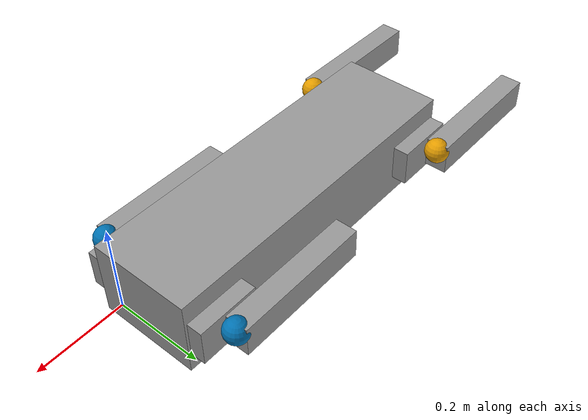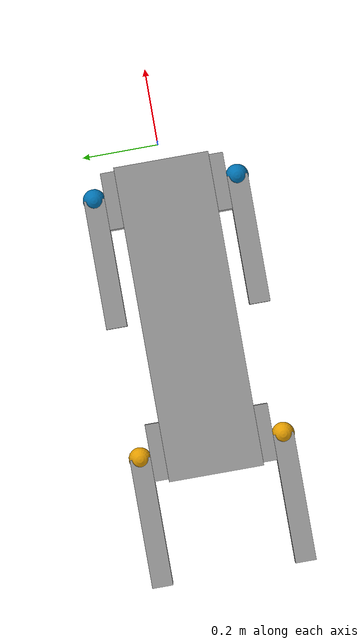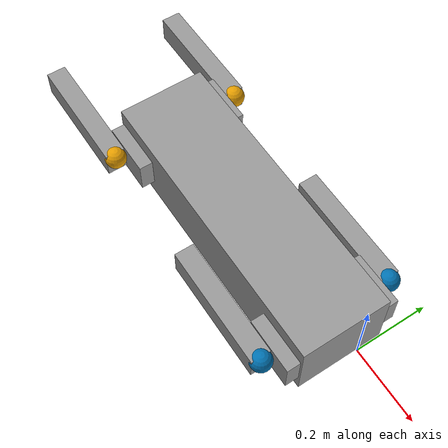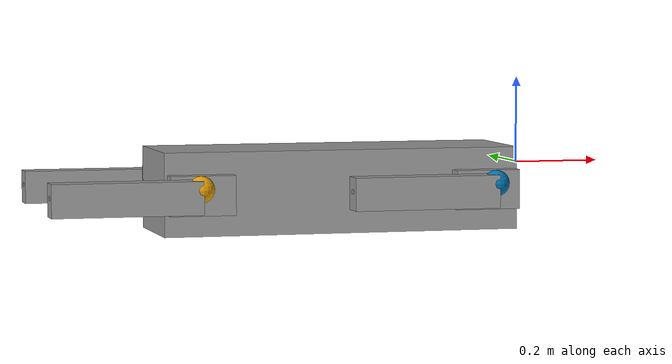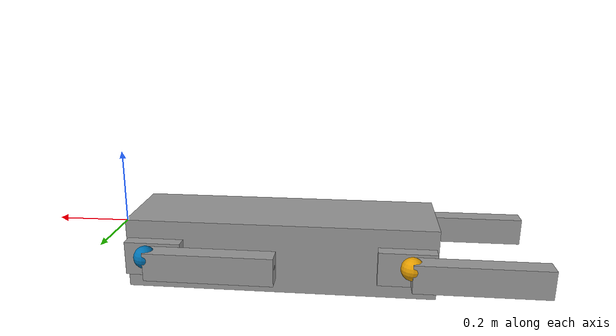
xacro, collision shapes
<?xml version="1.0"?>

<robot xmlns:xacro="http://www.ros.org/wiki/xacro" name="vision60_composite">
    <xacro:include filename="$(find ghost_description)/urdf/V3/vision60_3.8_macro.urdf.xacro"/>
    <xacro:include filename="$(find ghost_description)/urdf/V3/vision60_v3_t265_2pmd_sensorhead.urdf.xacro"
/>

    <xacro:vision60/>
    <xacro:sensorhead/>

   <!-- Rigid transform between low level "body" and high "level" body-->
   <link name="extrinsics_offset_link">
   </link>
   <joint name="offset_ll_to_body" type="fixed">
        <parent link="extrinsics_offset_link"/>
        <child link="body"/>
        <origin xyz="0.0 0.00 0.00"/>
        <axis xyz="1 0 0"/>
   </joint>

    <joint name="base_to_front_sensor_head" type="fixed">
        <parent link="front_sensor_head_link"/>
        <child link="extrinsics_offset_link"/>
        <origin xyz="-0.485 0 0"/>
        <axis xyz="1 0 0"/>
    </joint>

    <link name="imu_link">
    </link>

    <joint name="body_to_imu_link" type="fixed">
        <parent link="body"/>
        <child link="imu_link"/>
        <origin xyz="0 0.000195 0.01285" rpy="0 0 0"/>
        <axis xyz="1 0 0"/>
    </joint>

    <link name="os1_sensor">
    </link>

    <joint name="body_to_os1_sensor" type="fixed">
        <parent link="body"/>
        <child link="os1_sensor"/>
        <origin xyz="0.4372 0 0" rpy="0 0 0"/>
        <axis xyz="1 0 0"/>
    </joint>

    <link name="s_right_tof_link">
    </link>

    <joint name="body_to_s_right_tof" type="fixed">
        <parent link="body"/>
        <child link="s_right_tof_link"/>
        <origin xyz="-0.082 -0.119 0.061" rpy="3.1415 0.524 -1.57"/>
        <axis xyz="1 0 0"/>
    </joint>

    <link name="s_left_tof_link">
    </link>

    <joint name="body_to_s_left_tof" type="fixed">
        <parent link="body"/>
        <child link="s_left_tof_link"/>
        <origin xyz="-0.082 0.119 0.061" rpy="0 0.524 1.57"/>
        <axis xyz="1 0 0"/>
    </joint>

   <!-- Fake front depth camera -->
    <link name="synth_depth_left_camera_frame" />
    <joint name="synth_depth_left_camera_joint" type="fixed">
	<parent link="front_sensor_head_link"/>
        <child link="synth_depth_left_camera_frame"/>
	<origin xyz="0 0 -0.1" rpy="0 0.25 0" />
	<axis xyz="0 1 0"/>
    </joint>

    <link name="synth_depth_left_camera_optical_frame"/>
    <joint name="synth_depth_left_camera_optical_frame" type="fixed">
        <origin xyz="0 0 0" rpy="-1.57079632679 0.0 -1.57079632679"/>
        <parent link="synth_depth_left_camera_frame"/>
        <child link="synth_depth_left_camera_optical_frame"/>
    </joint>

   <!-- Frame corners -->
   <!-- Top corners -->

    <!-- bottom corners-->

</robot>

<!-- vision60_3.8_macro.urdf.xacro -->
<robot xmlns:xacro="http://www.ros.org/wiki/xacro" name="vision60_macro">
	<!-- Define parameters -->
	<xacro:property name="pi" value="3.14159265359"/>
	<xacro:property name="bodyLength" value="0.83"/>
	<xacro:property name="bodyWidth" value="0.25"/>
	<xacro:property name="bodyHeight" value="0.19"/>
	<xacro:property name="bodyMass" value="17.9"/>
	<xacro:property name="upperLegMass" value="2.525"/>
	<xacro:property name="lowerLegMass" value="0.375"/>
	<xacro:property name="toeMass" value="0.15"/>
	<xacro:property name="upperLegLength" value="0.34"/>
	<xacro:property name="upperLegWidth" value="0.055"/>
	<xacro:property name="upperLegHeight" value="0.075"/>
	<xacro:property name="lowerLegLength" value="0.34"/>
	<xacro:property name="lowerLegRadius" value="0.011"/>
	<xacro:property name="lowerLegAttachLinkLength" value="0"/>
	<xacro:property name="podMass" value="1.975"/>
	<xacro:property name="podLength" value="0.15"/>
	<xacro:property name="podXOffsetFromOuterEdge" value="0.085"/>
	<xacro:property name="podWidth" value="0.15"/>
	<xacro:property name="podHeight" value="0.09"/>
	<xacro:property name="dPodAxisToEdge" value="0.07"/>
	<xacro:property name="dx" value="0.34385"/>
	<xacro:property name="dy" value="0.092865"/>
	<xacro:property name="toeRadius" value="0.03"/>
	<xacro:property name="toeOffset" value="0.0"/>
	<xacro:property name="toeStiffness" value="30000.0"/>
	<xacro:property name="toeDamping" value="1000.0"/>
	<xacro:property name="toeSpinningFriction" value="0.3"/>
	<xacro:property name="toeLateralFriction" value="3.0"/>
	<xacro:property name="abKinLimit" value="0.43"/>
	<xacro:property name="abSpeedLimit" value="8.6"/>
	<xacro:property name="abEffortLimit" value="375"/>
	<xacro:property name="jointSpeedLimit" value="30"/>
	<xacro:property name="jointEffortLimit" value="87.5"/>
	<xacro:property name="hipBumper" value="0.3"/> <!-- This is the joint angle offset at the hip bumper -->

	<!-- Define materials -->
	<material name="gray">
		<color rgba="0.6 0.6 0.6 1.0"/>
	</material>
	<material name="darkgray">
		<color rgba="0.3 0.3 0.3 1.0"/>
	</material>
	<material name="blue">
		<color rgba="0 0 0.8 1"/>
	</material>
	<material name="black">
		<color rgba="0 0 0 1"/>
	</material>
	<material name="purple">
		<color rgba="0.5 0.0 0.5 1.0"/>
	</material>
	<material name="red">
		<color rgba="0.8 0.0 0.2 1.0"/>
	</material>

	<xacro:macro name="vision60">
		<!-- Body -->
		<link name="body">
			<visual>
				<origin rpy="0 0 0" xyz="0 0 -0.1"/>
				<geometry>
					<mesh filename="package://ghost_master/meshes/Frame.STL" scale="1 1 1"/>
				</geometry>
				<material name="gray"/>
			</visual>

			<inertial>
				<mass value="${bodyMass}"/>
				<!-- Uniform box -->
				<inertia ixx="0.0986"  ixy="0"  ixz="0" iyy="0.8105" iyz="0" izz="0.8369" />
			</inertial>

			<!-- Just copy geometry for collision -->
			<collision>
				<origin rpy="0 0 0" xyz="0 0 0"/>
				<geometry>
					<box size="${bodyLength} ${bodyWidth} ${bodyHeight}"/>
				</geometry>
			</collision>
		</link>

		<!-- Define our leg macro -->
		<xacro:macro name="leg" params="suffix left front hipJointName kneeJointName abductionJointName hipJointLowerLimit hipJointUpperLimit color">

			<!-- Hip motor -->
			<link name="hip${suffix}">
				<visual>
					<xacro:if value="${front == 1 and left == 1}">
						<origin rpy="0 -${pi} 0" xyz="0.05 -0.073 0"/>
					</xacro:if>

					<xacro:if value="${front == -1 and left == 1}">
						<origin rpy="0 0 0" xyz="-0.05 -0.073 0"/>
					</xacro:if>

					<xacro:if value="${front == 1 and left == -1}">
						<origin rpy="${pi} ${pi} 0" xyz="0.05 0 -0.05"/>
					</xacro:if>

					<xacro:if value="${front == -1 and left == -1}">
						<origin rpy="${pi} 0 0" xyz="-0.05 0.0 0.05"/>
					</xacro:if>

					<xacro:if value="${left == 1}">
						<geometry>
							<mesh filename="package://ghost_master/meshes/Hip_Pod_Assembly.stl" scale="1 1 1"/>
						</geometry>
					</xacro:if>
					<xacro:if value="${left == -1}">
						<geometry>
							<mesh filename="package://ghost_master/meshes/Hip_Pod_Assembly_Mirrored.stl" scale="1 1 1"/>
						</geometry>
					</xacro:if>
					<material name="gray"/>
				</visual>

				<collision>
					<origin rpy="${pi/2} 0 0" xyz="${-front * (podXOffsetFromOuterEdge - 0.5 * podLength)} ${left * (dPodAxisToEdge - podWidth/2)} 0"/>
					<geometry>
						<box size="${podLength} ${podHeight} ${podWidth}"/>
					</geometry>
				</collision>

				<inertial>
					<mass value="${podMass}"/>
					<inertia ixx="0.00891458"  ixy="0"  ixz="0" iyy="0.0100573" iyz="0" izz="0.01533698" />
				</inertial>
			</link>

			<!-- Abduction joint. Joint names are: 8 9 10 11 -->
			<joint name="${abductionJointName}" type="revolute">
				<parent link="body"/>
				<child link="hip${suffix}"/>
				<axis xyz="1 0 0"/>
				<origin xyz="${front * dx} ${left * dy} 0"/>
				<limit effort="${abEffortLimit}" velocity="${abSpeedLimit}" lower="${-abKinLimit}" upper="${abKinLimit}"/>
				<dynamics damping="0.0" friction="0.0"/>
			</joint>

			<!-- Upper leg -->
			<link name="upper${suffix}">
				<visual>
					<xacro:if value="${left == 1}">
						<origin rpy="3.14 0.1179843 0" xyz="0 0 0"/>
						<geometry>
							<mesh filename="package://ghost_master/meshes/Leg_Assembly.stl" scale="0.001 0.001 0.001"/>
						</geometry>
					</xacro:if>
					<xacro:if value="${left == -1}"> <!-- Right-->
						<origin rpy="0 0.1179843 0" xyz="0 0 0"/>
						<geometry>
							<mesh filename="package://ghost_master/meshes/Leg_Assembly_Mirrored.stl" scale="0.001 0.001 0.001"/>
						</geometry>
					</xacro:if>
					<material name="gray"/>
				</visual>

				<collision>
					<origin rpy="0 0 0" xyz="-${upperLegLength/2} ${left*0.2*0.0} 0"/>
					<geometry>
						<box size="${upperLegLength} ${upperLegWidth} ${upperLegHeight}"/>
					</geometry>
				</collision>

				<inertial>
					<mass value="${upperLegMass}"/>
					<inertia ixx="0.0003125"  ixy="0" ixz="0" iyy="0.0040625" iyz="0" izz="0.0040625" />
				</inertial>
			</link>

			<!-- Hip joint. (Motor to upper leg). Joint names are: 0 2 4 6 -->
			<joint name="${hipJointName}" type="revolute">
				<parent link="hip${suffix}"/>
				<child link="upper${suffix}"/>
				<axis xyz="0 -1 0"/>
				<origin xyz="0 ${left * (dPodAxisToEdge + upperLegWidth/2)} 0" />
				<limit effort="${jointEffortLimit}" velocity="${jointSpeedLimit}" lower="${hipJointLowerLimit}" upper="${hipJointUpperLimit}"/>
				<dynamics damping="0.0" friction="0.0"/>
			</joint>

			<!-- Lower leg -->
			<link name="lower${suffix}">
				<visual>
					<origin rpy="0 -0.3874631  0" xyz="0 0 0"/>
					<geometry>
						<mesh filename="package://ghost_master/meshes/Lower_Leg_Assembly.stl" scale="0.001 0.001 0.001"/>
					</geometry>

					<material name="gray"/>
				</visual>

				<collision>
					<origin rpy="0 ${pi/2} 0" xyz="${lowerLegLength/2} 0 -${lowerLegAttachLinkLength}"/>
					<geometry>
						<cylinder length="${lowerLegLength}" radius="${lowerLegRadius}"/>
					</geometry>
				</collision>

				<inertial>
					<mass value="${lowerLegMass}"/>
					<inertia ixx="0.00131075"  ixy="0"  ixz="0" iyy="0.00131075" iyz="0" izz="0.0001" />
				</inertial>
			</link>

			<!-- Knee joint. Joint names are: 1 3 5 7 -->
			<joint name="${kneeJointName}" type="revolute">
				<parent link="upper${suffix}"/>
				<child link="lower${suffix}"/>
				<axis xyz="0 1 0"/>
				<origin xyz="-${upperLegLength} 0 0" rpy="0 -0.05 0" />
				<limit effort="${jointEffortLimit}" velocity="${jointSpeedLimit}" lower="0" upper="${pi}"/>
				<dynamics damping="0.0" friction="0.0"/>
			</joint>

			<!-- Toe -->
			<link name="toe${suffix}">
				<contact>
					<friction_anchor/>
					<stiffness value="${toeStiffness}"/>
					<damping value="${toeDamping}"/>
					<spinning_friction value="${toeSpinningFriction}"/>
					<lateral_friction value="${toeLateralFriction}"/>
				</contact>

				<collision>
					<origin rpy="0 0 0" xyz="0 0 0"/>
					<geometry>
						<sphere radius="${toeRadius}"/>
					</geometry>
				</collision>

				<inertial>
					<mass value="${toeMass}"/>
					<inertia ixx="0.000025"  ixy="0"  ixz="0" iyy="0.000025" iyz="0" izz="0.000025" />
				</inertial>
			</link>
			<joint name="jtoe${suffix}" type="fixed">
				<parent link="lower${suffix}"/>
				<child link="toe${suffix}"/>
				<origin xyz="${lowerLegLength} 0 -${lowerLegAttachLinkLength + toeOffset}" rpy="0 0.0 0" />
				<dynamics damping="0.0" friction="0.0"/>
			</joint>

		</xacro:macro>

 <!-- Our four legs -->
 <xacro:leg suffix="0" hipJointName="0" kneeJointName="1" abductionJointName="8" front="1" left="1" hipJointLowerLimit="${-2*pi}" hipJointUpperLimit="${2*pi}" color="red"/>
 <xacro:leg suffix="1" hipJointName="2" kneeJointName="3" abductionJointName="9" front="-1" left="1" hipJointLowerLimit="${-2*pi}" hipJointUpperLimit="${2*pi}" color="purple"/>
 <xacro:leg suffix="2" hipJointName="4" kneeJointName="5" abductionJointName="10" front="1" left="-1" hipJointLowerLimit="${-2*pi}" hipJointUpperLimit="${2*pi}" color="purple"/>
 <xacro:leg suffix="3" hipJointName="6" kneeJointName="7" abductionJointName="11" front="-1" left="-1" hipJointLowerLimit="${-2*pi}" hipJointUpperLimit="${2*pi}" color="purple"/>

</xacro:macro>
</robot>

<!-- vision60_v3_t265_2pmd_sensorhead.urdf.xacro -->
<robot xmlns:xacro="http://www.ros.org/wiki/xacro" name="sensorhead">
        <xacro:macro name="sensorhead">
		<!-- Traking frame comes from the realsesne _pose_frame which will share the link with realsense_link
	    (parent) t265_pose_frame -> frontsensorhead -> extrinsics_offset_link -> body (childeren) -->

    <!-- branch 1 -->
    <!--connect to reset of the body -->
    <!-- Define front sensor head. This connects back to the body-->
    <link name="t265_pose_frame"/>
    <link name="front_sensor_head_link"/>
    <joint name="t265_to_sensor_head" type="fixed">
      <parent link="t265_pose_frame"/>
      <child link="front_sensor_head_link"/>
      <origin xyz="0.0292 0.0 -0.0507" rpy="0 0 0"/>
      <axis xyz="1 0 0"/>
    </joint>

    <!-- branch 2 -->
    <!-- start here: this defines the entry point for t265 based state estimate-->
    <link name="t265_fisheye1_frame"/>
    <joint name="t265_fisheye1_frame_to_center" type="fixed">
     <parent link="t265_pose_frame"/>
     <child link="t265_fisheye1_frame"/>
     <origin xyz="0.0 0.032 0.0" rpy="0 0 0"/>
     <axis xyz="1 0 0"/>
    </joint>

     <!-- begin branch 2 from t265_fisheye1_frame -->
     <!-- connect to the rest of the sensors -->
	<link name="t265_fisheye1_optical_frame"/>
	<joint name="t265_left_frame_to_t265_left_optical" type="fixed">
	   <parent link="t265_fisheye1_frame"/>
       <child link="t265_fisheye1_optical_frame"/>
	   <origin xyz="0.0 0.0 0.0"  rpy="-1.571 0 -1.571"/>
       <axis xyz="1 0 0 "/>
	</joint>

    <!-- Left PMD -->
    <link name="left_tof_optical_parent_frame"/>
    <joint name="t265_left_optical_link_to_left_tof_optical_frame" type="fixed">
      <parent link="t265_fisheye1_optical_frame"/>
      <child link="left_tof_optical_parent_frame"/>
      <origin xyz="-0.0055 0.0504 0.0057" rpy="0.4279 0.5096 1.7882"/>
      <axis xyz="0 0 1"/>
    </joint>

    <link name="left_tof_link"/>
    <joint name="left_tof_parent_to_sensor" type="fixed">
        <parent link="left_tof_optical_parent_frame"/>
        <child link="left_tof_link"/>
        <origin xyz="0 0 0" rpy="1.5708 -1.5708 0 "/>
        <axis xyz="1 0 0"/>
    </joint>

    <!-- Righ PMD -->
    <link name="right_tof_optical_parent_frame"/>
    <joint name="left_tof_optical_frame_to_right_tof_optical_frame" type="fixed">
      <parent link="left_tof_optical_parent_frame"/>
      <child link="right_tof_optical_parent_frame"/>
      <origin xyz="-0.0128 -0.0648 0.0215" rpy="-0.5706 -0.1526 -0.3234"/>
      <axis xyz="0 0 1"/>
    </joint>

    <link name="right_tof_link"/>
    <joint name="right_tof_parent_to_sensor" type="fixed">
        <parent link="right_tof_optical_parent_frame"/>
        <child link="right_tof_link"/>
        <origin xyz="0 0 0" rpy="1.5708 -1.5708 0"/>
        <axis xyz="1 0 0"/>
    </joint>

    </xacro:macro>
</robot>
